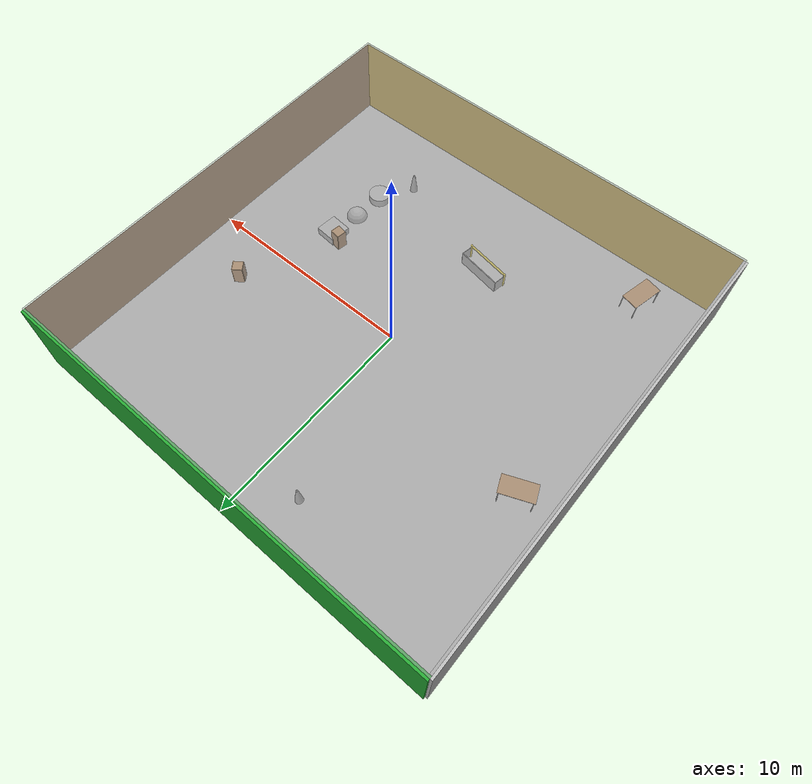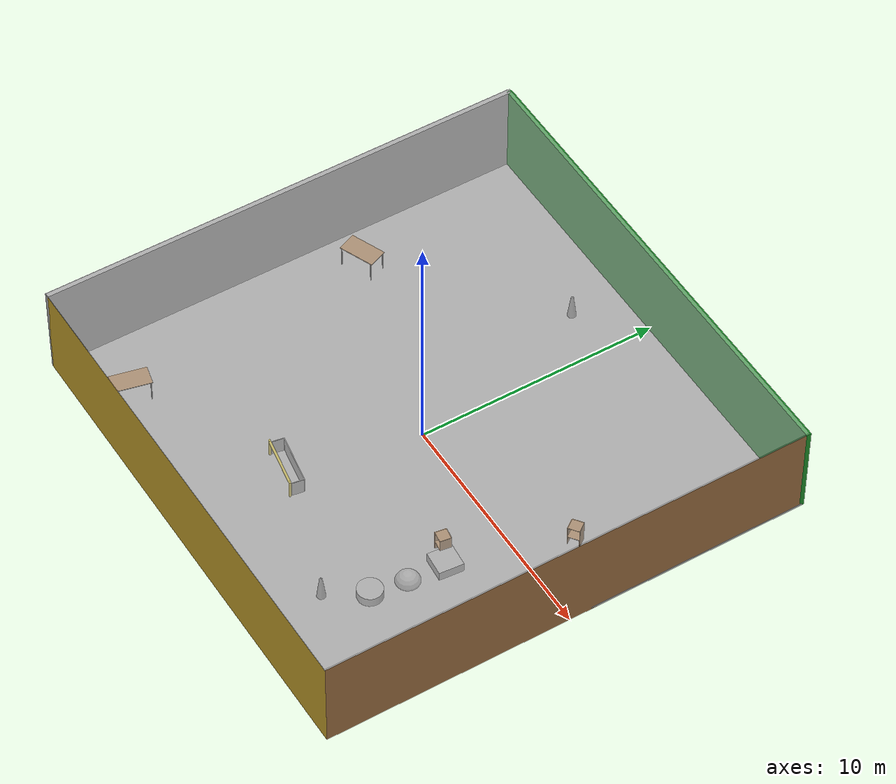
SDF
<sdf version="1.4">
 <world name="default">
  <physics type="ode">
   <max_step_size>0.001</max_step_size>
   <real_time_factor>1</real_time_factor>
   <real_time_update_rate>1000</real_time_update_rate>
   <gravity>0 0 -9.8</gravity>
  </physics>
  <scene><ambient>0.4 0.4 0.4 1</ambient><background>0.7 0.7 0.7 1</background><shadows>1</shadows></scene>
  <model name="Surrounding">
   <static>1</static>
   <link name="Ceiling">
    <collision name="Ceiling_Collision"><geometry><box><size>20 20 0.1</size></box></geometry></collision>
    <visual name="Ceiling_Visual">
     <geometry><box><size>20 20 0.1</size></box></geometry>
     <material>
      <script><uri>file://media/materials/scripts/gazebo.material</uri><name>Gazebo/GreyTransparent</name></script>
     </material>
    </visual>
    <pose>0 0 4.05 0 0 0</pose>
   </link>
   <link name="Wall_South">
    <collision name="Wall_South_Collision">
     <geometry><box><size>20 0 4</size></box></geometry>
     <pose>0 0 2 0 -0 0</pose>
    </collision>
    <visual name="Wall_South_Visual">
     <pose>0 0 2 0 -0 0</pose>
     <geometry><box><size>20 0 4</size></box></geometry>
     <material>
      <script><uri>file://media/materials/scripts/gazebo.material</uri><name>Gazebo/Gold</name></script>
     </material>
    </visual>
    <velocity_decay><linear>0</linear><angular>0</angular></velocity_decay>
    <pose>0 -10 0 0 -0 0</pose>
   </link>
   <link name="Wall_East">
    <collision name="Wall_21_Collision">
     <geometry><box><size>20 0 4</size></box></geometry>
     <pose>0 0 2 0 -0 0</pose>
    </collision>
    <visual name="Wall_21_Visual">
     <pose>0 0 2 0 -0 0</pose>
     <geometry><box><size>20 0 4</size></box></geometry>
     <material>
      <script><uri>file://media/materials/scripts/gazebo.material</uri><name>Gazebo/Wood</name></script>
     </material>
    </visual>
    <velocity_decay><linear>0</linear><angular>0</angular></velocity_decay>
    <pose>10 0 0 0 -0 1.5708</pose>
   </link>
   <link name="Wall_North">
    <collision name="Wall_22_Collision">
     <geometry><box><size>20 0.2 4</size></box></geometry>
     <pose>0 0 2 0 -0 0</pose>
    </collision>
    <visual name="Wall_22_Visual">
     <pose>0 0 2 0 -0 0</pose>
     <geometry><box><size>20 0.2 4</size></box></geometry>
     <material>
      <script><uri>file://media/materials/scripts/gazebo.material</uri><name>Gazebo/Green</name></script>
     </material>
    </visual>
    <velocity_decay><linear>0</linear><angular>0</angular></velocity_decay>
    <pose>0 10 0 0 -0 0</pose>
   </link>
   <link name="Wall_West">
    <collision name="Wall_23_Collision">
     <geometry><box><size>20 0.2 4</size></box></geometry>
     <pose>0 0 2 0 -0 0</pose>
    </collision>
    <visual name="Wall_23_Visual">
     <pose>0 0 2 0 -0 0</pose>
     <geometry><box><size>20 0.2 4</size></box></geometry>
     <material>
      <script><uri>file://media/materials/scripts/gazebo.material</uri><name>Gazebo/LightOn</name></script>
     </material>
    </visual>
    <velocity_decay><linear>0</linear><angular>0</angular></velocity_decay>
    <pose>-10 0 0 0 0 -1.5708</pose>
   </link>
   <link name="Ground_link">
    <collision name="collision">
     <pose>0 0 .05 0 -0 0</pose>
     <geometry><box><size>20 20 0.1</size></box></geometry>
    </collision>
    <visual name="visual">
     <pose>0 0 .05 0 -0 0</pose>
     <geometry><box><size>20 20 0.1</size></box></geometry>
     <material>
      <script><uri>file://media/materials/scripts/gazebo.material</uri><name>Gazebo/PioneerBody</name></script>
     </material>
    </visual>
   </link>
   <static>1</static>
  </model>
  <spherical_coordinates>
   <surface_model>EARTH_WGS84</surface_model>
   <latitude_deg>0</latitude_deg>
   <longitude_deg>0</longitude_deg>
   <elevation>0</elevation>
   <heading_deg>0</heading_deg>
  </spherical_coordinates>
  <light name="lightball_0" type="diffuse">
   <diffuse>0.8 0.8 0.8 1</diffuse>
   <specular>0.2 0.2 0.2 1</specular>
   <attenuation>
    <range>100</range>
    <constant>0.7</constant>
    <linear>0.01</linear>
    <quadratic>0.001</quadratic>
   </attenuation>
   <direction>-0.5 0.1 -0.9</direction>
   <pose>8.96262314021 -7.5590328163 0.60022683854 0 0 0</pose>
  </light>
  <light name="lightball_1" type="diffuse">
   <diffuse>0.8 0.8 0.8 1</diffuse>
   <specular>0.2 0.2 0.2 1</specular>
   <attenuation>
    <range>100</range>
    <constant>0.7</constant>
    <linear>0.01</linear>
    <quadratic>0.001</quadratic>
   </attenuation>
   <direction>-0.5 0.1 -0.9</direction>
   <pose>4.3909411399 -1.84229739435 2.1464729008 0 0 0</pose>
  </light>
  <light name="lightball_2" type="diffuse">
   <diffuse>0.8 0.8 0.8 1</diffuse>
   <specular>0.2 0.2 0.2 1</specular>
   <attenuation>
    <range>100</range>
    <constant>0.7</constant>
    <linear>0.01</linear>
    <quadratic>0.001</quadratic>
   </attenuation>
   <direction>-0.5 0.1 -0.9</direction>
   <pose>3.58149666293 -5.42277864314 3.06292197185 0 0 0</pose>
  </light>
  <light name="lightball_3" type="diffuse">
   <diffuse>0.8 0.8 0.8 1</diffuse>
   <specular>0.2 0.2 0.2 1</specular>
   <attenuation>
    <range>100</range>
    <constant>0.7</constant>
    <linear>0.01</linear>
    <quadratic>0.001</quadratic>
   </attenuation>
   <direction>-0.5 0.1 -0.9</direction>
   <pose>1.05810278513 -9.3317789768 1.4123772213 0 0 0</pose>
  </light>
  <light name="lightball_4" type="diffuse">
   <diffuse>0.8 0.8 0.8 1</diffuse>
   <specular>0.2 0.2 0.2 1</specular>
   <attenuation>
    <range>100</range>
    <constant>0.7</constant>
    <linear>0.01</linear>
    <quadratic>0.001</quadratic>
   </attenuation>
   <direction>-0.5 0.1 -0.9</direction>
   <pose>-7.52134363691 -0.736243335668 2.22661603769 0 0 0</pose>
  </light>
  <light name="lightball_5" type="diffuse">
   <diffuse>0.8 0.8 0.8 1</diffuse>
   <specular>0.2 0.2 0.2 1</specular>
   <attenuation>
    <range>100</range>
    <constant>0.7</constant>
    <linear>0.01</linear>
    <quadratic>0.001</quadratic>
   </attenuation>
   <direction>-0.5 0.1 -0.9</direction>
   <pose>0.358686101489 2.51118367933 2.1285465641 0 0 0</pose>
  </light>
  <light name="lightball_6" type="diffuse">
   <diffuse>0.8 0.8 0.8 1</diffuse>
   <specular>0.2 0.2 0.2 1</specular>
   <attenuation>
    <range>100</range>
    <constant>0.7</constant>
    <linear>0.01</linear>
    <quadratic>0.001</quadratic>
   </attenuation>
   <direction>-0.5 0.1 -0.9</direction>
   <pose>9.97462227299 -3.19793906133 1.83171555107 0 0 0</pose>
  </light>
  <light name="lightball_7" type="diffuse">
   <diffuse>0.8 0.8 0.8 1</diffuse>
   <specular>0.2 0.2 0.2 1</specular>
   <attenuation>
    <range>100</range>
    <constant>0.7</constant>
    <linear>0.01</linear>
    <quadratic>0.001</quadratic>
   </attenuation>
   <direction>-0.5 0.1 -0.9</direction>
   <pose>4.90308162273 -5.72737108534 2.79543806297 0 0 0</pose>
  </light>
  <include><uri>model://table</uri><pose>-7.16869431105 -8.24039187837 0 0 0 1.34679463554</pose></include>
  <include><uri>model://table</uri><pose>-8.24788458044 2.36682523951 0 0 0 0.393941119609</pose></include>
  <include>
   <uri>model://robocup_3Dsim_goal</uri>
   <pose>-1.0181827196 -5.45419486731 0 0 0 1.401501519</pose>
  </include>
  <include>
   <uri>model://construction_cone</uri>
   <pose>-2.02065388377 7.81758897063 0 0 0 0.990340182917</pose>
  </include>
  <include>
   <uri>model://construction_cone</uri>
   <pose>4.53879807886 -7.00220727593 0 0 0 1.21934651617</pose>
  </include>
  <include>
   <uri>model://textured_shapes</uri>
   <pose>5.56247193425 -4.0149304941 0 0 0 3.05481203892</pose>
  </include>
  <include><uri>model://cabinet</uri><pose>5.07913117474 -2.24566400378 0 0 0 1.41887049872</pose></include>
  <include><uri>model://cabinet</uri><pose>7.18902397255 2.04709481107 0 0 0 2.21202146783</pose></include>
 </world>
</sdf>

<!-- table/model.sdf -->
<sdf version="1.5">
  <model name="table">
    <static>true</static>
    <link name="link">
      <collision name="surface">
        <pose>0 0 1.0 0 0 0</pose>
        <geometry>
          <box>
            <size>1.5 0.8 0.03</size>
          </box>
        </geometry>
        <surface>
          <friction>
            <ode>
              <mu>0.6</mu>
              <mu2>0.6</mu2>
            </ode>
          </friction>
        </surface>
      </collision>
      <visual name="visual1">
        <pose>0 0 1.0 0 0 0</pose>
        <geometry>
          <box>
            <size>1.5 0.8 0.03</size>
          </box>
        </geometry>
        <material>
          <script>
            <uri>model://media/materials/scripts/gazebo.material</uri>
            <name>Gazebo/Wood</name>
          </script>
        </material>
      </visual>
      <collision name="front_left_leg">
        <pose>0.68 0.38 0.5 0 0 0</pose>
        <geometry>
          <cylinder>
            <radius>0.02</radius>
            <length>1.0</length>
          </cylinder>
        </geometry>
      </collision>
      <visual name="front_left_leg">
        <pose>0.68 0.38 0.5 0 0 0</pose>
        <geometry>
          <cylinder>
            <radius>0.02</radius>
            <length>1.0</length>
          </cylinder>
        </geometry>
        <material>
          <script>
            <uri>model://media/materials/scripts/gazebo.material</uri>
            <name>Gazebo/Grey</name>
          </script>
        </material>
      </visual>
      <collision name="front_right_leg">
        <pose>0.68 -0.38 0.5 0 0 0</pose>
        <geometry>
          <cylinder>
            <radius>0.02</radius>
            <length>1.0</length>
          </cylinder>
        </geometry>
      </collision>
      <visual name="front_right_leg">
        <pose>0.68 -0.38 0.5 0 0 0</pose>
        <geometry>
          <cylinder>
            <radius>0.02</radius>
            <length>1.0</length>
          </cylinder>
        </geometry>
        <material>
          <script>
            <uri>model://media/materials/scripts/gazebo.material</uri>
            <name>Gazebo/Grey</name>
          </script>
        </material>
      </visual>
      <collision name="back_right_leg">
        <pose>-0.68 -0.38 0.5 0 0 0</pose>
        <geometry>
          <cylinder>
            <radius>0.02</radius>
            <length>1.0</length>
          </cylinder>
        </geometry>
      </collision>
      <visual name="back_right_leg">
        <pose>-0.68 -0.38 0.5 0 0 0</pose>
        <geometry>
          <cylinder>
            <radius>0.02</radius>
            <length>1.0</length>
          </cylinder>
        </geometry>
        <material>
          <script>
            <uri>model://media/materials/scripts/gazebo.material</uri>
            <name>Gazebo/Grey</name>
          </script>
        </material>
      </visual>
      <collision name="back_left_leg">
        <pose>-0.68 0.38 0.5 0 0 0</pose>
        <geometry>
          <cylinder>
            <radius>0.02</radius>
            <length>1.0</length>
          </cylinder>
        </geometry>
      </collision>
      <visual name="back_left_leg">
        <pose>-0.68 0.38 0.5 0 0 0</pose>
        <geometry>
          <cylinder>
            <radius>0.02</radius>
            <length>1.0</length>
          </cylinder>
        </geometry>
        <material>
          <script>
            <uri>model://media/materials/scripts/gazebo.material</uri>
            <name>Gazebo/Grey</name>
          </script>
        </material>
      </visual>
    </link>
  </model>
</sdf>

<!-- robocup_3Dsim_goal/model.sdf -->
<sdf version="1.5">
  <model name="robocup_3d_goal">
    <static>true</static>
    <link name="left_post">
      <pose>0 1.05 0.45 0 0 0</pose>
      <collision name="collision">
        <geometry>
          <cylinder>
            <radius>0.05</radius>
            <length>0.9</length>
          </cylinder>
        </geometry>
      </collision>
      <visual name="visual">
        <geometry>
          <cylinder>
            <radius>0.05</radius>
            <length>0.9</length>
          </cylinder>
        </geometry>
        <material>
          <script>
            <uri>file://media/materials/scripts/gazebo.material</uri>
            <name>Gazebo/ZincYellow</name>
          </script>
        </material>
      </visual>
    </link>
    <link name="left_support_horiz_lower">
      <pose>0.30 1.05 0.01 0 0 0</pose>
      <collision name="collision">
        <geometry>
          <box>
            <size>0.50 0.02 0.02</size>
          </box>
        </geometry>
      </collision>
      <visual name="visual">
        <geometry>
          <box>
            <size>0.50 0.02 0.02</size>
          </box>
        </geometry>
        <material>
          <script>
            <uri>file://media/materials/scripts/gazebo.material</uri>
            <name>Gazebo/White</name>
          </script>
        </material>
      </visual>
    </link>
    <link name="left_support_horiz_upper">
      <pose>0.30 1.05 0.79 0 0 0</pose>
      <collision name="collision">
        <geometry>
          <box>
            <size>0.50 0.02 0.02</size>
          </box>
        </geometry>
      </collision>
      <visual name="visual">
        <geometry>
          <box>
            <size>0.50 0.02 0.02</size>
          </box>
        </geometry>
        <material>
          <script>
            <uri>file://media/materials/scripts/gazebo.material</uri>
            <name>Gazebo/White</name>
          </script>
        </material>
      </visual>
    </link>
    <link name="left_support_vertical">
      <pose>0.56 1.05 0.4 0 1.5708 0</pose>
      <collision name="collision">
        <geometry>
          <box>
            <size>0.80 0.02 0.02</size>
          </box>
        </geometry>
      </collision>
      <visual name="visual">
        <geometry>
          <box>
            <size>0.80 0.02 0.02</size>
          </box>
        </geometry>
        <material>
          <script>
            <uri>file://media/materials/scripts/gazebo.material</uri>
            <name>Gazebo/White</name>
          </script>
        </material>
      </visual>
    </link>
    <link name="right_support_horiz_lower">
      <pose>0.30 -1.05 0.01 0 0 0</pose>
      <collision name="collision">
        <geometry>
          <box>
            <size>0.50 0.02 0.02</size>
          </box>
        </geometry>
      </collision>
      <visual name="visual">
        <geometry>
          <box>
            <size>0.50 0.02 0.02</size>
          </box>
        </geometry>
        <material>
          <script>
            <uri>file://media/materials/scripts/gazebo.material</uri>
            <name>Gazebo/White</name>
          </script>
        </material>
      </visual>
    </link>
    <link name="right_support_horiz_upper">
      <pose>0.30 -1.05 0.79 0 0 0</pose>
      <collision name="collision">
        <geometry>
          <box>
            <size>0.50 0.02 0.02</size>
          </box>
        </geometry>
      </collision>
      <visual name="visual">
        <geometry>
          <box>
            <size>0.50 0.02 0.02</size>
          </box>
        </geometry>
        <material>
          <script>
            <uri>file://media/materials/scripts/gazebo.material</uri>
            <name>Gazebo/White</name>
          </script>
        </material>
      </visual>
    </link>
    <link name="right_support_vertical">
      <pose>0.56 -1.05 0.4 0 1.5708 0</pose>
      <collision name="collision">
        <geometry>
          <box>
            <size>0.80 0.02 0.02</size>
          </box>
        </geometry>
      </collision>
      <visual name="visual">
        <geometry>
          <box>
            <size>0.80 0.02 0.02</size>
          </box>
        </geometry>
        <material>
          <script>
            <uri>file://media/materials/scripts/gazebo.material</uri>
            <name>Gazebo/White</name>
          </script>
        </material>
      </visual>
    </link>
    <link name="center_support_horiz_lower">
      <pose>0.56 0 0.01 0 1.5708 0</pose>
      <collision name="collision">
        <geometry>
          <box>
            <size>0.02 2.08 0.02</size>
          </box>
        </geometry>
      </collision>
      <visual name="visual">
        <geometry>
          <box>
            <size>0.02 2.08 0.02</size>
          </box>
        </geometry>
        <material>
          <script>
            <uri>file://media/materials/scripts/gazebo.material</uri>
            <name>Gazebo/White</name>
          </script>
        </material>
      </visual>
    </link>
    <link name="center_support_horiz_upper">
      <pose>0.56 0 0.79 0 1.5708 0</pose>
      <collision name="collision">
        <geometry>
          <box>
            <size>0.02 2.08 0.02</size>
          </box>
        </geometry>
      </collision>
      <visual name="visual">
        <geometry>
          <box>
            <size>0.02 2.08 0.02</size>
          </box>
        </geometry>
        <material>
          <script>
            <uri>file://media/materials/scripts/gazebo.material</uri>
            <name>Gazebo/White</name>
          </script>
        </material>
      </visual>
    </link>
    <link name="right_post">
      <pose>0 -1.05 0.45 0 0 0</pose>
      <collision name="collision">
        <geometry>
          <cylinder>
            <radius>0.05</radius>
            <length>0.9</length>
          </cylinder>
        </geometry>
      </collision>
      <visual name="visual">
        <geometry>
          <cylinder>
            <radius>0.05</radius>
            <length>0.9</length>
          </cylinder>
        </geometry>
        <material>
          <script>
            <uri>file://media/materials/scripts/gazebo.material</uri>
            <name>Gazebo/ZincYellow</name>
          </script>
        </material>
      </visual>
    </link>
    <link name="crossbar">
      <pose>0 0 0.85 1.57 1.57 0</pose>
      <collision name="collision">
        <geometry>
          <cylinder>
            <radius>0.05</radius>
            <length>2.0</length>
          </cylinder>
        </geometry>
      </collision>
      <visual name="visual">
        <geometry>
          <cylinder>
            <radius>0.05</radius>
            <length>2.0</length>
          </cylinder>
        </geometry>
        <material>
          <script>
            <uri>file://media/materials/scripts/gazebo.material</uri>
            <name>Gazebo/ZincYellow</name>
          </script>
        </material>
      </visual>
    </link>
    <link name="center_net">
      <pose>0.56 0 0.40 0 0 0</pose>
      <collision name="collision">
        <geometry>
          <box>
            <size>0.01 2.1 0.80</size>
          </box>
        </geometry>
      </collision>
      <visual name="visual">
        <geometry>
          <box>
            <size>0.01 2.1 0.80</size>
          </box>
        </geometry>
        <material>
          <script>
            <uri>model://../model_source/models/robocup09_spl_field/materials/scripts/</uri>
            <uri>model://../model_source/models/robocup09_spl_field/materials/textures/</uri>
            <name>RoboCup/Net</name>
          </script>
        </material>
      </visual>
    </link>
    <link name="left_net">
      <pose>0.30 1.05 0.40 0 0 0</pose>
      <collision name="collision">
        <geometry>
          <box>
            <size>0.50 0.01 0.76</size>
          </box>
        </geometry>
      </collision>
      <visual name="visual">
        <geometry>
          <box>
            <size>0.50 0.01 0.76</size>
          </box>
        </geometry>
        <material>
          <script>
            <uri>model://../model_source/models/robocup09_spl_field/materials/scripts/</uri>
            <uri>model://../model_source/models/robocup09_spl_field/materials/textures/</uri>
            <name>RoboCup/Net</name>
          </script>
        </material>
      </visual>
    </link>
    <link name="right_net">
      <pose>0.30 -1.05 0.40 0 0 0</pose>
      <collision name="collision">
        <geometry>
          <box>
            <size>0.50 0.01 0.76</size>
          </box>
        </geometry>
      </collision>
      <visual name="visual">
        <geometry>
          <box>
            <size>0.50 0.01 0.76</size>
          </box>
        </geometry>
        <material>
          <script>
            <uri>model://../model_source/models/robocup09_spl_field/materials/scripts/</uri>
            <uri>model://../model_source/models/robocup09_spl_field/materials/textures/</uri>
            <name>RoboCup/Net</name>
          </script>
        </material>
      </visual>
    </link>
  </model>
</sdf>

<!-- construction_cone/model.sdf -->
<sdf version="1.5">
  <model name="Construction Cone">
    <link name="link">
      <collision name="collision">
        <geometry>
          <mesh>
            <scale>10 10 10</scale>
            <uri>file://isr-testbed/construction_cone/meshes/construction_cone.dae</uri>
          </mesh>
        </geometry>
      </collision>
      <visual name="visual">
        <geometry>
          <mesh>
            <scale>10 10 10</scale>
            <uri>file://isr-testbed/construction_cone/meshes/construction_cone.dae</uri>
          </mesh>
        </geometry>
      </visual>
    </link>
  </model>
</sdf>

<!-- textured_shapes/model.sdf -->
<sdf version="1.6">
  <model name="textured_shapes">
    <pose>0 0 0.5 0 0 0</pose>
    <link name="box">
      <pose>0 -1.5 0 0 0 0</pose>
      <collision name="collision">
        <geometry>
          <box>
            <size>1 1 1</size>
          </box>
        </geometry>
      </collision>
      <visual name="visual">
        <geometry>
          <box>
            <size>1 1 1</size>
          </box>
        </geometry>
        <material>
          <script>
            <uri>model://../model_source/models/textured_shapes/materials/scripts</uri>
            <uri>model://../model_source/models/textured_shapes/materials/textures</uri>
            <name>TexturedShape/Squares</name>
          </script>
        </material>
      </visual>
    </link>
    <link name="sphere">
      <collision name="collision">
        <geometry>
          <sphere>
            <radius>0.5</radius>
          </sphere>
        </geometry>
      </collision>
      <visual name="visual">
        <geometry>
          <sphere>
            <radius>0.5</radius>
          </sphere>
        </geometry>
        <material>
          <script>
            <uri>model://../model_source/models/textured_shapes/materials/scripts</uri>
            <uri>model://../model_source/models/textured_shapes/materials/textures</uri>
            <name>TexturedShape/Squares</name>
          </script>
        </material>
      </visual>
    </link>
    <link name="cylinder">
      <pose>0 1.5 0 0 0 0</pose>
      <collision name="collision">
        <geometry>
          <cylinder>
            <radius>0.5</radius>
            <length>1</length>
          </cylinder>
        </geometry>
      </collision>
      <visual name="visual">
        <geometry>
          <cylinder>
            <radius>0.5</radius>
            <length>1</length>
          </cylinder>
        </geometry>
        <material>
          <script>
            <uri>model://../model_source/models/textured_shapes/materials/scripts</uri>
            <uri>model://../model_source/models/textured_shapes/materials/textures</uri>
            <name>TexturedShape/Squares</name>
          </script>
        </material>
      </visual>
    </link>
  </model>
</sdf>

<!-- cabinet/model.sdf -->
<sdf version="1.5">
  <model name="cabinet">
    <static>true</static>
    <link name="cabinet_bottom_plate">
      <inertial>
        <pose>0 0 -1 0 0 0</pose>
        <inertia>
          <ixx>2.050000</ixx>
          <ixy>0</ixy>
          <ixz>0</ixz>
          <iyy>2.050000</iyy>
          <iyz>0</iyz>
          <izz>2.050000</izz>
        </inertia>
        <mass>25.000000</mass>
      </inertial>
      <collision name="cabinet_bottom_plate_geom">
        <pose>0 0 0.010000 0 0 0</pose>
        <geometry>
          <box>
            <size>0.450000 0.450000 0.020000</size>
          </box>
        </geometry>
      </collision>
      <visual name="cabinet_bottom_plate_geom_visual">
        <pose>0 0 0.010000 0 0 0</pose>
        <geometry>
          <box>
            <size>0.450000 0.450000 0.020000</size>
          </box>
        </geometry>
        <material>
          <script>
            <uri>model://media/materials/scripts/gazebo.material</uri>
            <name>Gazebo/Wood</name>
          </script>
        </material>
      </visual>
      <collision name="cabinet_bottom_plate_geom_cabinet_back_plate">
        <pose>0.235000 0 0.510000 0 0 0</pose>
        <geometry>
          <box>
            <size>0.020000 0.450000 1.020000</size>
          </box>
        </geometry>
      </collision>
      <visual name="cabinet_bottom_plate_geom_cabinet_back_plate_visual">
        <pose>0.235000 0 0.510000 0 0 0</pose>
        <geometry>
          <box>
            <size>0.020000 0.450000 1.020000</size>
          </box>
        </geometry>
        <material>
          <script>
            <uri>model://media/materials/scripts/gazebo.material</uri>
            <name>Gazebo/Wood</name>
          </script>
        </material>
      </visual>
      <collision name="cabinet_bottom_plate_geom_cabinet_left_plate">
        <pose>0 0.235000 0.510000 0 0 0</pose>
        <geometry>
          <box>
            <size>0.450000 0.020000 1.020000</size>
          </box>
        </geometry>
      </collision>
      <visual name="cabinet_bottom_plate_geom_cabinet_left_plate_visual">
        <pose>0 0.235000 0.510000 0 0 0</pose>
        <geometry>
          <box>
            <size>0.450000 0.020000 1.020000</size>
          </box>
        </geometry>
        <material>
          <script>
            <uri>model://media/materials/scripts/gazebo.material</uri>
            <name>Gazebo/Wood</name>
          </script>
        </material>
      </visual>
      <collision name="cabinet_bottom_plate_geom_cabinet_middle_plate">
        <pose>0 0 0.510000 0 0 0</pose>
        <geometry>
          <box>
            <size>0.450000 0.450000 0.020000</size>
          </box>
        </geometry>
      </collision>
      <visual name="cabinet_bottom_plate_geom_cabinet_middle_plate_visual">
        <pose>0 0 0.510000 0 0 0</pose>
        <geometry>
          <box>
            <size>0.450000 0.450000 0.020000</size>
          </box>
        </geometry>
        <material>
          <script>
            <uri>model://media/materials/scripts/gazebo.material</uri>
            <name>Gazebo/Wood</name>
          </script>
        </material>
      </visual>
      <collision name="cabinet_bottom_plate_geom_cabinet_right_plate">
        <pose>0 -0.235000 0.510000 0 0 0</pose>
        <geometry>
          <box>
            <size>0.450000 0.020000 1.020000</size>
          </box>
        </geometry>
      </collision>
      <visual name="cabinet_bottom_plate_geom_cabinet_right_plate_visual">
        <pose>0 -0.235000 0.510000 0 0 0</pose>
        <geometry>
          <box>
            <size>0.450000 0.020000 1.020000</size>
          </box>
        </geometry>
        <material>
          <script>
            <uri>model://media/materials/scripts/gazebo.material</uri>
            <name>Gazebo/Wood</name>
          </script>
        </material>
      </visual>
      <collision name="cabinet_bottom_plate_geom_cabinet_top_plate">
        <pose>0 0 1.010000 0 0 0</pose>
        <geometry>
          <box>
            <size>0.450000 0.450000 0.020000</size>
          </box>
        </geometry>
      </collision>
      <visual name="cabinet_bottom_plate_geom_cabinet_top_plate_visual">
        <pose>0 0 1.010000 0 0 0</pose>
        <geometry>
          <box>
            <size>0.450000 0.450000 0.020000</size>
          </box>
        </geometry>
        <material>
          <script>
            <uri>model://media/materials/scripts/gazebo.material</uri>
            <name>Gazebo/Wood</name>
          </script>
        </material>
      </visual>
    </link>
  </model>
</sdf>
